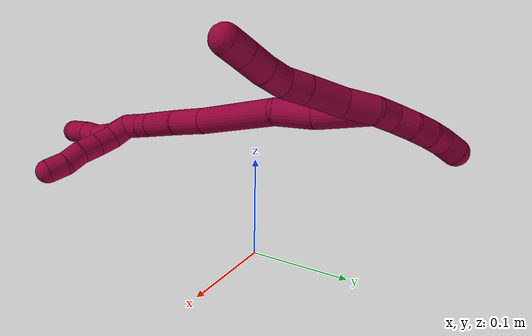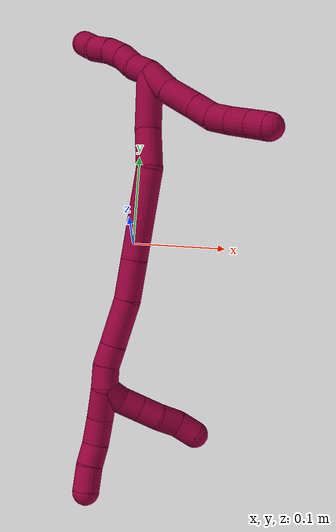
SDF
<sdf version="1.7">
 <world name="default">
  <model name="8">
   <static>0</static>
   <link name="8">
    <collision name="collision-cylinder-e_1_2_8">
     <pose>-0.006238 -0.006517 0.011314 0.522587 -0.445691 -0.121046</pose>
     <geometry><cylinder><radius>0.0125</radius><length>0.028941</length></cylinder></geometry>
     <surface>
      <friction><ode><mu>1.16</mu><mu2>1.16</mu2><slip1>0</slip1><slip2>0</slip2></ode></friction>
      <contact><ode><kp>1e+06</kp><kd>1</kd><max_vel>0</max_vel><min_depth>0.001</min_depth></ode></contact>
     </surface>
    </collision>
    <visual name="visual-cylinder-e_1_2_8">
     <pose>-0.006238 -0.006517 0.011314 0.522587 -0.445691 -0.121046</pose>
     <geometry><cylinder><radius>0.0125</radius><length>0.028941</length></cylinder></geometry>
     <material><ambient>0.584314 0 0.227451 1</ambient></material>
    </visual>
    <collision name="collision-cylinder-e_2_8_9">
     <pose>-0.019477 -0.018209 0.038092 0.322914 -0.405522 -0.066945</pose>
     <geometry><cylinder><radius>0.0125</radius><length>0.035493</length></cylinder></geometry>
     <surface>
      <friction><ode><mu>1.16</mu><mu2>1.16</mu2><slip1>0</slip1><slip2>0</slip2></ode></friction>
      <contact><ode><kp>1e+06</kp><kd>1</kd><max_vel>0</max_vel><min_depth>0.001</min_depth></ode></contact>
     </surface>
    </collision>
    <visual name="visual-cylinder-e_2_8_9">
     <pose>-0.019477 -0.018209 0.038092 0.322914 -0.405522 -0.066945</pose>
     <geometry><cylinder><radius>0.0125</radius><length>0.035493</length></cylinder></geometry>
     <material><ambient>0.584314 0 0.227451 1</ambient></material>
    </visual>
    <collision name="collision-cylinder-e_3_9_10">
     <pose>-0.030556 -0.026724 0.062575 0.354759 -0.401053 -0.072841</pose>
     <geometry><cylinder><radius>0.0125</radius><length>0.020892</length></cylinder></geometry>
     <surface>
      <friction><ode><mu>1.16</mu><mu2>1.16</mu2><slip1>0</slip1><slip2>0</slip2></ode></friction>
      <contact><ode><kp>1e+06</kp><kd>1</kd><max_vel>0</max_vel><min_depth>0.001</min_depth></ode></contact>
     </surface>
    </collision>
    <visual name="visual-cylinder-e_3_9_10">
     <pose>-0.030556 -0.026724 0.062575 0.354759 -0.401053 -0.072841</pose>
     <geometry><cylinder><radius>0.0125</radius><length>0.020892</length></cylinder></geometry>
     <material><ambient>0.584314 0 0.227451 1</ambient></material>
    </visual>
    <collision name="collision-cylinder-e_4_10_11">
     <pose>-0.038686 -0.030343 0.081495 0.028095 -0.388318 -0.005525</pose>
     <geometry><cylinder><radius>0.0125</radius><length>0.021405</length></cylinder></geometry>
     <surface>
      <friction><ode><mu>1.16</mu><mu2>1.16</mu2><slip1>0</slip1><slip2>0</slip2></ode></friction>
      <contact><ode><kp>1e+06</kp><kd>1</kd><max_vel>0</max_vel><min_depth>0.001</min_depth></ode></contact>
     </surface>
    </collision>
    <visual name="visual-cylinder-e_4_10_11">
     <pose>-0.038686 -0.030343 0.081495 0.028095 -0.388318 -0.005525</pose>
     <geometry><cylinder><radius>0.0125</radius><length>0.021405</length></cylinder></geometry>
     <material><ambient>0.584314 0 0.227451 1</ambient></material>
    </visual>
    <collision name="collision-cylinder-e_5_11_12">
     <pose>-0.047817 -0.030131 0.101748 -0.047295 -0.455644 0.010967</pose>
     <geometry><cylinder><radius>0.0125</radius><length>0.023081</length></cylinder></geometry>
     <surface>
      <friction><ode><mu>1.16</mu><mu2>1.16</mu2><slip1>0</slip1><slip2>0</slip2></ode></friction>
      <contact><ode><kp>1e+06</kp><kd>1</kd><max_vel>0</max_vel><min_depth>0.001</min_depth></ode></contact>
     </surface>
    </collision>
    <visual name="visual-cylinder-e_5_11_12">
     <pose>-0.047817 -0.030131 0.101748 -0.047295 -0.455644 0.010967</pose>
     <geometry><cylinder><radius>0.0125</radius><length>0.023081</length></cylinder></geometry>
     <material><ambient>0.584314 0 0.227451 1</ambient></material>
    </visual>
    <collision name="collision-cylinder-e_6_12_6">
     <pose>-0.057307 -0.029329 0.121173 -0.034464 -0.452371 0.007932</pose>
     <geometry><cylinder><radius>0.0125</radius><length>0.020188</length></cylinder></geometry>
     <surface>
      <friction><ode><mu>1.16</mu><mu2>1.16</mu2><slip1>0</slip1><slip2>0</slip2></ode></friction>
      <contact><ode><kp>1e+06</kp><kd>1</kd><max_vel>0</max_vel><min_depth>0.001</min_depth></ode></contact>
     </surface>
    </collision>
    <visual name="visual-cylinder-e_6_12_6">
     <pose>-0.057307 -0.029329 0.121173 -0.034464 -0.452371 0.007932</pose>
     <geometry><cylinder><radius>0.0125</radius><length>0.020188</length></cylinder></geometry>
     <material><ambient>0.584314 0 0.227451 1</ambient></material>
    </visual>
    <collision name="collision-cylinder-e_1_2_13">
     <pose>0.003439 0.00201 -0.009172 -2.92585 0.351099 -2.04534</pose>
     <geometry><cylinder><radius>0.0125</radius><length>0.02</length></cylinder></geometry>
     <surface>
      <friction><ode><mu>1.16</mu><mu2>1.16</mu2><slip1>0</slip1><slip2>0</slip2></ode></friction>
      <contact><ode><kp>1e+06</kp><kd>1</kd><max_vel>0</max_vel><min_depth>0.001</min_depth></ode></contact>
     </surface>
    </collision>
    <visual name="visual-cylinder-e_1_2_13">
     <pose>0.003439 0.00201 -0.009172 -2.92585 0.351099 -2.04534</pose>
     <geometry><cylinder><radius>0.0125</radius><length>0.02</length></cylinder></geometry>
     <material><ambient>0.584314 0 0.227451 1</ambient></material>
    </visual>
    <collision name="collision-cylinder-e_2_13_14">
     <pose>0.012224 0.007556 -0.02602 -2.70993 0.564015 -1.846</pose>
     <geometry><cylinder><radius>0.0125</radius><length>0.02</length></cylinder></geometry>
     <surface>
      <friction><ode><mu>1.16</mu><mu2>1.16</mu2><slip1>0</slip1><slip2>0</slip2></ode></friction>
      <contact><ode><kp>1e+06</kp><kd>1</kd><max_vel>0</max_vel><min_depth>0.001</min_depth></ode></contact>
     </surface>
    </collision>
    <visual name="visual-cylinder-e_2_13_14">
     <pose>0.012224 0.007556 -0.02602 -2.70993 0.564015 -1.846</pose>
     <geometry><cylinder><radius>0.0125</radius><length>0.02</length></cylinder></geometry>
     <material><ambient>0.584314 0 0.227451 1</ambient></material>
    </visual>
    <collision name="collision-cylinder-e_3_14_15">
     <pose>0.021904 0.013138 -0.042473 -2.91259 0.448209 -2.20702</pose>
     <geometry><cylinder><radius>0.0125</radius><length>0.02</length></cylinder></geometry>
     <surface>
      <friction><ode><mu>1.16</mu><mu2>1.16</mu2><slip1>0</slip1><slip2>0</slip2></ode></friction>
      <contact><ode><kp>1e+06</kp><kd>1</kd><max_vel>0</max_vel><min_depth>0.001</min_depth></ode></contact>
     </surface>
    </collision>
    <visual name="visual-cylinder-e_3_14_15">
     <pose>0.021904 0.013138 -0.042473 -2.91259 0.448209 -2.20702</pose>
     <geometry><cylinder><radius>0.0125</radius><length>0.02</length></cylinder></geometry>
     <material><ambient>0.584314 0 0.227451 1</ambient></material>
    </visual>
    <collision name="collision-cylinder-e_4_15_16">
     <pose>0.029436 0.015554 -0.060718 -3.10252 0.32558 -2.90479</pose>
     <geometry><cylinder><radius>0.0125</radius><length>0.02</length></cylinder></geometry>
     <surface>
      <friction><ode><mu>1.16</mu><mu2>1.16</mu2><slip1>0</slip1><slip2>0</slip2></ode></friction>
      <contact><ode><kp>1e+06</kp><kd>1</kd><max_vel>0</max_vel><min_depth>0.001</min_depth></ode></contact>
     </surface>
    </collision>
    <visual name="visual-cylinder-e_4_15_16">
     <pose>0.029436 0.015554 -0.060718 -3.10252 0.32558 -2.90479</pose>
     <geometry><cylinder><radius>0.0125</radius><length>0.02</length></cylinder></geometry>
     <material><ambient>0.584314 0 0.227451 1</ambient></material>
    </visual>
    <collision name="collision-cylinder-e_5_16_5">
     <pose>0.038502 0.017219 -0.078179 -2.98093 0.627032 -2.65482</pose>
     <geometry><cylinder><radius>0.0125</radius><length>0.02</length></cylinder></geometry>
     <surface>
      <friction><ode><mu>1.16</mu><mu2>1.16</mu2><slip1>0</slip1><slip2>0</slip2></ode></friction>
      <contact><ode><kp>1e+06</kp><kd>1</kd><max_vel>0</max_vel><min_depth>0.001</min_depth></ode></contact>
     </surface>
    </collision>
    <visual name="visual-cylinder-e_5_16_5">
     <pose>0.038502 0.017219 -0.078179 -2.98093 0.627032 -2.65482</pose>
     <geometry><cylinder><radius>0.0125</radius><length>0.02</length></cylinder></geometry>
     <material><ambient>0.584314 0 0.227451 1</ambient></material>
    </visual>
    <collision name="collision-cylinder-e_1_2_17">
     <pose>-0.010556 -0.024505 0.002131 1.48405 -0.405367 -0.372454</pose>
     <geometry><cylinder><radius>0.0125</radius><length>0.053534</length></cylinder></geometry>
     <surface>
      <friction><ode><mu>1.16</mu><mu2>1.16</mu2><slip1>0</slip1><slip2>0</slip2></ode></friction>
      <contact><ode><kp>1e+06</kp><kd>1</kd><max_vel>0</max_vel><min_depth>0.001</min_depth></ode></contact>
     </surface>
    </collision>
    <visual name="visual-cylinder-e_1_2_17">
     <pose>-0.010556 -0.024505 0.002131 1.48405 -0.405367 -0.372454</pose>
     <geometry><cylinder><radius>0.0125</radius><length>0.053534</length></cylinder></geometry>
     <material><ambient>0.584314 0 0.227451 1</ambient></material>
    </visual>
    <collision name="collision-cylinder-e_2_17_18">
     <pose>-0.030788 -0.064686 0.00808 1.33188 -0.54023 -0.428399</pose>
     <geometry><cylinder><radius>0.0125</radius><length>0.037625</length></cylinder></geometry>
     <surface>
      <friction><ode><mu>1.16</mu><mu2>1.16</mu2><slip1>0</slip1><slip2>0</slip2></ode></friction>
      <contact><ode><kp>1e+06</kp><kd>1</kd><max_vel>0</max_vel><min_depth>0.001</min_depth></ode></contact>
     </surface>
    </collision>
    <visual name="visual-cylinder-e_2_17_18">
     <pose>-0.030788 -0.064686 0.00808 1.33188 -0.54023 -0.428399</pose>
     <geometry><cylinder><radius>0.0125</radius><length>0.037625</length></cylinder></geometry>
     <material><ambient>0.584314 0 0.227451 1</ambient></material>
    </visual>
    <collision name="collision-cylinder-e_3_18_19">
     <pose>-0.056753 -0.120049 0.00897 1.64444 -0.388511 -0.417404</pose>
     <geometry><cylinder><radius>0.0125</radius><length>0.086</length></cylinder></geometry>
     <surface>
      <friction><ode><mu>1.16</mu><mu2>1.16</mu2><slip1>0</slip1><slip2>0</slip2></ode></friction>
      <contact><ode><kp>1e+06</kp><kd>1</kd><max_vel>0</max_vel><min_depth>0.001</min_depth></ode></contact>
     </surface>
    </collision>
    <visual name="visual-cylinder-e_3_18_19">
     <pose>-0.056753 -0.120049 0.00897 1.64444 -0.388511 -0.417404</pose>
     <geometry><cylinder><radius>0.0125</radius><length>0.086</length></cylinder></geometry>
     <material><ambient>0.584314 0 0.227451 1</ambient></material>
    </visual>
    <collision name="collision-cylinder-e_4_19_20">
     <pose>-0.080995 -0.1768 0.005066 1.62793 -0.435577 -0.460333</pose>
     <geometry><cylinder><radius>0.0125</radius><length>0.037703</length></cylinder></geometry>
     <surface>
      <friction><ode><mu>1.16</mu><mu2>1.16</mu2><slip1>0</slip1><slip2>0</slip2></ode></friction>
      <contact><ode><kp>1e+06</kp><kd>1</kd><max_vel>0</max_vel><min_depth>0.001</min_depth></ode></contact>
     </surface>
    </collision>
    <visual name="visual-cylinder-e_4_19_20">
     <pose>-0.080995 -0.1768 0.005066 1.62793 -0.435577 -0.460333</pose>
     <geometry><cylinder><radius>0.0125</radius><length>0.037703</length></cylinder></geometry>
     <material><ambient>0.584314 0 0.227451 1</ambient></material>
    </visual>
    <collision name="collision-cylinder-e_5_20_21">
     <pose>-0.097999 -0.213249 -0.000273 1.79217 -0.427354 -0.529759</pose>
     <geometry><cylinder><radius>0.0125</radius><length>0.043668</length></cylinder></geometry>
     <surface>
      <friction><ode><mu>1.16</mu><mu2>1.16</mu2><slip1>0</slip1><slip2>0</slip2></ode></friction>
      <contact><ode><kp>1e+06</kp><kd>1</kd><max_vel>0</max_vel><min_depth>0.001</min_depth></ode></contact>
     </surface>
    </collision>
    <visual name="visual-cylinder-e_5_20_21">
     <pose>-0.097999 -0.213249 -0.000273 1.79217 -0.427354 -0.529759</pose>
     <geometry><cylinder><radius>0.0125</radius><length>0.043668</length></cylinder></geometry>
     <material><ambient>0.584314 0 0.227451 1</ambient></material>
    </visual>
    <collision name="collision-cylinder-e_6_21_22">
     <pose>-0.111291 -0.241782 -0.006843 1.80757 -0.423548 -0.533098</pose>
     <geometry><cylinder><radius>0.0125</radius><length>0.020644</length></cylinder></geometry>
     <surface>
      <friction><ode><mu>1.16</mu><mu2>1.16</mu2><slip1>0</slip1><slip2>0</slip2></ode></friction>
      <contact><ode><kp>1e+06</kp><kd>1</kd><max_vel>0</max_vel><min_depth>0.001</min_depth></ode></contact>
     </surface>
    </collision>
    <visual name="visual-cylinder-e_6_21_22">
     <pose>-0.111291 -0.241782 -0.006843 1.80757 -0.423548 -0.533098</pose>
     <geometry><cylinder><radius>0.0125</radius><length>0.020644</length></cylinder></geometry>
     <material><ambient>0.584314 0 0.227451 1</ambient></material>
    </visual>
    <collision name="collision-cylinder-e_7_22_1">
     <pose>-0.119995 -0.260318 -0.00846 1.50805 -0.442893 -0.416736</pose>
     <geometry><cylinder><radius>0.0125</radius><length>0.020825</length></cylinder></geometry>
     <surface>
      <friction><ode><mu>1.16</mu><mu2>1.16</mu2><slip1>0</slip1><slip2>0</slip2></ode></friction>
      <contact><ode><kp>1e+06</kp><kd>1</kd><max_vel>0</max_vel><min_depth>0.001</min_depth></ode></contact>
     </surface>
    </collision>
    <visual name="visual-cylinder-e_7_22_1">
     <pose>-0.119995 -0.260318 -0.00846 1.50805 -0.442893 -0.416736</pose>
     <geometry><cylinder><radius>0.0125</radius><length>0.020825</length></cylinder></geometry>
     <material><ambient>0.584314 0 0.227451 1</ambient></material>
    </visual>
    <collision name="collision-cylinder-e_1_1_23">
     <pose>-0.12687 -0.284233 -0.009814 1.7038 -0.163166 -0.186324</pose>
     <geometry><cylinder><radius>0.0125</radius><length>0.029703</length></cylinder></geometry>
     <surface>
      <friction><ode><mu>1.16</mu><mu2>1.16</mu2><slip1>0</slip1><slip2>0</slip2></ode></friction>
      <contact><ode><kp>1e+06</kp><kd>1</kd><max_vel>0</max_vel><min_depth>0.001</min_depth></ode></contact>
     </surface>
    </collision>
    <visual name="visual-cylinder-e_1_1_23">
     <pose>-0.12687 -0.284233 -0.009814 1.7038 -0.163166 -0.186324</pose>
     <geometry><cylinder><radius>0.0125</radius><length>0.029703</length></cylinder></geometry>
     <material><ambient>0.584314 0 0.227451 1</ambient></material>
    </visual>
    <collision name="collision-cylinder-e_2_23_24">
     <pose>-0.134305 -0.31062 -0.012731 1.65276 -0.399238 -0.432365</pose>
     <geometry><cylinder><radius>0.0125</radius><length>0.025838</length></cylinder></geometry>
     <surface>
      <friction><ode><mu>1.16</mu><mu2>1.16</mu2><slip1>0</slip1><slip2>0</slip2></ode></friction>
      <contact><ode><kp>1e+06</kp><kd>1</kd><max_vel>0</max_vel><min_depth>0.001</min_depth></ode></contact>
     </surface>
    </collision>
    <visual name="visual-cylinder-e_2_23_24">
     <pose>-0.134305 -0.31062 -0.012731 1.65276 -0.399238 -0.432365</pose>
     <geometry><cylinder><radius>0.0125</radius><length>0.025838</length></cylinder></geometry>
     <material><ambient>0.584314 0 0.227451 1</ambient></material>
    </visual>
    <collision name="collision-cylinder-e_3_24_25">
     <pose>-0.145514 -0.330593 -0.014551 1.67468 -0.64915 -0.714698</pose>
     <geometry><cylinder><radius>0.0125</radius><length>0.020471</length></cylinder></geometry>
     <surface>
      <friction><ode><mu>1.16</mu><mu2>1.16</mu2><slip1>0</slip1><slip2>0</slip2></ode></friction>
      <contact><ode><kp>1e+06</kp><kd>1</kd><max_vel>0</max_vel><min_depth>0.001</min_depth></ode></contact>
     </surface>
    </collision>
    <visual name="visual-cylinder-e_3_24_25">
     <pose>-0.145514 -0.330593 -0.014551 1.67468 -0.64915 -0.714698</pose>
     <geometry><cylinder><radius>0.0125</radius><length>0.020471</length></cylinder></geometry>
     <material><ambient>0.584314 0 0.227451 1</ambient></material>
    </visual>
    <collision name="collision-cylinder-e_4_25_4">
     <pose>-0.157855 -0.348995 -0.015169 1.54869 -0.538777 -0.527539</pose>
     <geometry><cylinder><radius>0.0125</radius><length>0.023988</length></cylinder></geometry>
     <surface>
      <friction><ode><mu>1.16</mu><mu2>1.16</mu2><slip1>0</slip1><slip2>0</slip2></ode></friction>
      <contact><ode><kp>1e+06</kp><kd>1</kd><max_vel>0</max_vel><min_depth>0.001</min_depth></ode></contact>
     </surface>
    </collision>
    <visual name="visual-cylinder-e_4_25_4">
     <pose>-0.157855 -0.348995 -0.015169 1.54869 -0.538777 -0.527539</pose>
     <geometry><cylinder><radius>0.0125</radius><length>0.023988</length></cylinder></geometry>
     <material><ambient>0.584314 0 0.227451 1</ambient></material>
    </visual>
    <collision name="collision-cylinder-e_1_1_26">
     <pose>-0.121062 -0.27673 -0.001612 0.842864 0.346441 0.156558</pose>
     <geometry><cylinder><radius>0.0125</radius><length>0.02</length></cylinder></geometry>
     <surface>
      <friction><ode><mu>1.16</mu><mu2>1.16</mu2><slip1>0</slip1><slip2>0</slip2></ode></friction>
      <contact><ode><kp>1e+06</kp><kd>1</kd><max_vel>0</max_vel><min_depth>0.001</min_depth></ode></contact>
     </surface>
    </collision>
    <visual name="visual-cylinder-e_1_1_26">
     <pose>-0.121062 -0.27673 -0.001612 0.842864 0.346441 0.156558</pose>
     <geometry><cylinder><radius>0.0125</radius><length>0.02</length></cylinder></geometry>
     <material><ambient>0.584314 0 0.227451 1</ambient></material>
    </visual>
    <collision name="collision-cylinder-e_2_26_27">
     <pose>-0.114896 -0.288546 0.012973 0.522379 0.280734 0.0755</pose>
     <geometry><cylinder><radius>0.0125</radius><length>0.02</length></cylinder></geometry>
     <surface>
      <friction><ode><mu>1.16</mu><mu2>1.16</mu2><slip1>0</slip1><slip2>0</slip2></ode></friction>
      <contact><ode><kp>1e+06</kp><kd>1</kd><max_vel>0</max_vel><min_depth>0.001</min_depth></ode></contact>
     </surface>
    </collision>
    <visual name="visual-cylinder-e_2_26_27">
     <pose>-0.114896 -0.288546 0.012973 0.522379 0.280734 0.0755</pose>
     <geometry><cylinder><radius>0.0125</radius><length>0.02</length></cylinder></geometry>
     <material><ambient>0.584314 0 0.227451 1</ambient></material>
    </visual>
    <collision name="collision-cylinder-e_3_27_28">
     <pose>-0.109675 -0.297926 0.029842 0.492755 0.247533 0.062551</pose>
     <geometry><cylinder><radius>0.0125</radius><length>0.02</length></cylinder></geometry>
     <surface>
      <friction><ode><mu>1.16</mu><mu2>1.16</mu2><slip1>0</slip1><slip2>0</slip2></ode></friction>
      <contact><ode><kp>1e+06</kp><kd>1</kd><max_vel>0</max_vel><min_depth>0.001</min_depth></ode></contact>
     </surface>
    </collision>
    <visual name="visual-cylinder-e_3_27_28">
     <pose>-0.109675 -0.297926 0.029842 0.492755 0.247533 0.062551</pose>
     <geometry><cylinder><radius>0.0125</radius><length>0.02</length></cylinder></geometry>
     <material><ambient>0.584314 0 0.227451 1</ambient></material>
    </visual>
    <collision name="collision-cylinder-e_4_28_29">
     <pose>-0.102925 -0.307236 0.046078 0.550547 0.444528 0.12749</pose>
     <geometry><cylinder><radius>0.0125</radius><length>0.02</length></cylinder></geometry>
     <surface>
      <friction><ode><mu>1.16</mu><mu2>1.16</mu2><slip1>0</slip1><slip2>0</slip2></ode></friction>
      <contact><ode><kp>1e+06</kp><kd>1</kd><max_vel>0</max_vel><min_depth>0.001</min_depth></ode></contact>
     </surface>
    </collision>
    <visual name="visual-cylinder-e_4_28_29">
     <pose>-0.102925 -0.307236 0.046078 0.550547 0.444528 0.12749</pose>
     <geometry><cylinder><radius>0.0125</radius><length>0.02</length></cylinder></geometry>
     <material><ambient>0.584314 0 0.227451 1</ambient></material>
    </visual>
    <collision name="collision-cylinder-e_5_29_3">
     <pose>-0.096824 -0.317567 0.061853 0.606649 0.181012 0.056793</pose>
     <geometry><cylinder><radius>0.0125</radius><length>0.02</length></cylinder></geometry>
     <surface>
      <friction><ode><mu>1.16</mu><mu2>1.16</mu2><slip1>0</slip1><slip2>0</slip2></ode></friction>
      <contact><ode><kp>1e+06</kp><kd>1</kd><max_vel>0</max_vel><min_depth>0.001</min_depth></ode></contact>
     </surface>
    </collision>
    <visual name="visual-cylinder-e_5_29_3">
     <pose>-0.096824 -0.317567 0.061853 0.606649 0.181012 0.056793</pose>
     <geometry><cylinder><radius>0.0125</radius><length>0.02</length></cylinder></geometry>
     <material><ambient>0.584314 0 0.227451 1</ambient></material>
    </visual>
    <collision name="collision-sphere-3">
     <pose>-0.095024 -0.323175 0.069934 0 -0 0</pose>
     <geometry><sphere><radius>0.0125</radius></sphere></geometry>
     <surface>
      <friction><ode><mu>1.16</mu><mu2>1.16</mu2><slip1>0</slip1><slip2>0</slip2></ode></friction>
      <contact><ode><kp>1e+06</kp><kd>1</kd><max_vel>0</max_vel><min_depth>0.001</min_depth></ode></contact>
     </surface>
    </collision>
    <visual name="visual-sphere-3">
     <pose>-0.095024 -0.323175 0.069934 0 -0 0</pose>
     <geometry><sphere><radius>0.0125</radius></sphere></geometry>
     <material><ambient>0.584314 0 0.227451 1</ambient></material>
    </visual>
    <collision name="collision-sphere-29">
     <pose>-0.098625 -0.311959 0.053772 0 -0 0</pose>
     <geometry><sphere><radius>0.0125</radius></sphere></geometry>
     <surface>
      <friction><ode><mu>1.16</mu><mu2>1.16</mu2><slip1>0</slip1><slip2>0</slip2></ode></friction>
      <contact><ode><kp>1e+06</kp><kd>1</kd><max_vel>0</max_vel><min_depth>0.001</min_depth></ode></contact>
     </surface>
    </collision>
    <visual name="visual-sphere-29">
     <pose>-0.098625 -0.311959 0.053772 0 -0 0</pose>
     <geometry><sphere><radius>0.0125</radius></sphere></geometry>
     <material><ambient>0.584314 0 0.227451 1</ambient></material>
    </visual>
    <collision name="collision-sphere-28">
     <pose>-0.107225 -0.302513 0.038383 0 -0 0</pose>
     <geometry><sphere><radius>0.0125</radius></sphere></geometry>
     <surface>
      <friction><ode><mu>1.16</mu><mu2>1.16</mu2><slip1>0</slip1><slip2>0</slip2></ode></friction>
      <contact><ode><kp>1e+06</kp><kd>1</kd><max_vel>0</max_vel><min_depth>0.001</min_depth></ode></contact>
     </surface>
    </collision>
    <visual name="visual-sphere-28">
     <pose>-0.107225 -0.302513 0.038383 0 -0 0</pose>
     <geometry><sphere><radius>0.0125</radius></sphere></geometry>
     <material><ambient>0.584314 0 0.227451 1</ambient></material>
    </visual>
    <collision name="collision-sphere-27">
     <pose>-0.112125 -0.29334 0.0213 0 -0 0</pose>
     <geometry><sphere><radius>0.0125</radius></sphere></geometry>
     <surface>
      <friction><ode><mu>1.16</mu><mu2>1.16</mu2><slip1>0</slip1><slip2>0</slip2></ode></friction>
      <contact><ode><kp>1e+06</kp><kd>1</kd><max_vel>0</max_vel><min_depth>0.001</min_depth></ode></contact>
     </surface>
    </collision>
    <visual name="visual-sphere-27">
     <pose>-0.112125 -0.29334 0.0213 0 -0 0</pose>
     <geometry><sphere><radius>0.0125</radius></sphere></geometry>
     <material><ambient>0.584314 0 0.227451 1</ambient></material>
    </visual>
    <collision name="collision-sphere-26">
     <pose>-0.117667 -0.283752 0.004646 0 -0 0</pose>
     <geometry><sphere><radius>0.0125</radius></sphere></geometry>
     <surface>
      <friction><ode><mu>1.16</mu><mu2>1.16</mu2><slip1>0</slip1><slip2>0</slip2></ode></friction>
      <contact><ode><kp>1e+06</kp><kd>1</kd><max_vel>0</max_vel><min_depth>0.001</min_depth></ode></contact>
     </surface>
    </collision>
    <visual name="visual-sphere-26">
     <pose>-0.117667 -0.283752 0.004646 0 -0 0</pose>
     <geometry><sphere><radius>0.0125</radius></sphere></geometry>
     <material><ambient>0.584314 0 0.227451 1</ambient></material>
    </visual>
    <collision name="collision-sphere-4">
     <pose>-0.164009 -0.359288 -0.014942 0 -0 0</pose>
     <geometry><sphere><radius>0.0125</radius></sphere></geometry>
     <surface>
      <friction><ode><mu>1.16</mu><mu2>1.16</mu2><slip1>0</slip1><slip2>0</slip2></ode></friction>
      <contact><ode><kp>1e+06</kp><kd>1</kd><max_vel>0</max_vel><min_depth>0.001</min_depth></ode></contact>
     </surface>
    </collision>
    <visual name="visual-sphere-4">
     <pose>-0.164009 -0.359288 -0.014942 0 -0 0</pose>
     <geometry><sphere><radius>0.0125</radius></sphere></geometry>
     <material><ambient>0.584314 0 0.227451 1</ambient></material>
    </visual>
    <collision name="collision-sphere-25">
     <pose>-0.151702 -0.338703 -0.015397 0 -0 0</pose>
     <geometry><sphere><radius>0.0125</radius></sphere></geometry>
     <surface>
      <friction><ode><mu>1.16</mu><mu2>1.16</mu2><slip1>0</slip1><slip2>0</slip2></ode></friction>
      <contact><ode><kp>1e+06</kp><kd>1</kd><max_vel>0</max_vel><min_depth>0.001</min_depth></ode></contact>
     </surface>
    </collision>
    <visual name="visual-sphere-25">
     <pose>-0.151702 -0.338703 -0.015397 0 -0 0</pose>
     <geometry><sphere><radius>0.0125</radius></sphere></geometry>
     <material><ambient>0.584314 0 0.227451 1</ambient></material>
    </visual>
    <collision name="collision-sphere-24">
     <pose>-0.139326 -0.322484 -0.013706 0 -0 0</pose>
     <geometry><sphere><radius>0.0125</radius></sphere></geometry>
     <surface>
      <friction><ode><mu>1.16</mu><mu2>1.16</mu2><slip1>0</slip1><slip2>0</slip2></ode></friction>
      <contact><ode><kp>1e+06</kp><kd>1</kd><max_vel>0</max_vel><min_depth>0.001</min_depth></ode></contact>
     </surface>
    </collision>
    <visual name="visual-sphere-24">
     <pose>-0.139326 -0.322484 -0.013706 0 -0 0</pose>
     <geometry><sphere><radius>0.0125</radius></sphere></geometry>
     <material><ambient>0.584314 0 0.227451 1</ambient></material>
    </visual>
    <collision name="collision-sphere-23">
     <pose>-0.129283 -0.298757 -0.011757 0 -0 0</pose>
     <geometry><sphere><radius>0.0125</radius></sphere></geometry>
     <surface>
      <friction><ode><mu>1.16</mu><mu2>1.16</mu2><slip1>0</slip1><slip2>0</slip2></ode></friction>
      <contact><ode><kp>1e+06</kp><kd>1</kd><max_vel>0</max_vel><min_depth>0.001</min_depth></ode></contact>
     </surface>
    </collision>
    <visual name="visual-sphere-23">
     <pose>-0.129283 -0.298757 -0.011757 0 -0 0</pose>
     <geometry><sphere><radius>0.0125</radius></sphere></geometry>
     <material><ambient>0.584314 0 0.227451 1</ambient></material>
    </visual>
    <collision name="collision-sphere-1">
     <pose>-0.124458 -0.269708 -0.00787 0 -0 0</pose>
     <geometry><sphere><radius>0.0125</radius></sphere></geometry>
     <surface>
      <friction><ode><mu>1.16</mu><mu2>1.16</mu2><slip1>0</slip1><slip2>0</slip2></ode></friction>
      <contact><ode><kp>1e+06</kp><kd>1</kd><max_vel>0</max_vel><min_depth>0.001</min_depth></ode></contact>
     </surface>
    </collision>
    <visual name="visual-sphere-1">
     <pose>-0.124458 -0.269708 -0.00787 0 -0 0</pose>
     <geometry><sphere><radius>0.0125</radius></sphere></geometry>
     <material><ambient>0.584314 0 0.227451 1</ambient></material>
    </visual>
    <collision name="collision-sphere-22">
     <pose>-0.115533 -0.250929 -0.00905 0 -0 0</pose>
     <geometry><sphere><radius>0.0125</radius></sphere></geometry>
     <surface>
      <friction><ode><mu>1.16</mu><mu2>1.16</mu2><slip1>0</slip1><slip2>0</slip2></ode></friction>
      <contact><ode><kp>1e+06</kp><kd>1</kd><max_vel>0</max_vel><min_depth>0.001</min_depth></ode></contact>
     </surface>
    </collision>
    <visual name="visual-sphere-22">
     <pose>-0.115533 -0.250929 -0.00905 0 -0 0</pose>
     <geometry><sphere><radius>0.0125</radius></sphere></geometry>
     <material><ambient>0.584314 0 0.227451 1</ambient></material>
    </visual>
    <collision name="collision-sphere-21">
     <pose>-0.107048 -0.232634 -0.004636 0 -0 0</pose>
     <geometry><sphere><radius>0.0125</radius></sphere></geometry>
     <surface>
      <friction><ode><mu>1.16</mu><mu2>1.16</mu2><slip1>0</slip1><slip2>0</slip2></ode></friction>
      <contact><ode><kp>1e+06</kp><kd>1</kd><max_vel>0</max_vel><min_depth>0.001</min_depth></ode></contact>
     </surface>
    </collision>
    <visual name="visual-sphere-21">
     <pose>-0.107048 -0.232634 -0.004636 0 -0 0</pose>
     <geometry><sphere><radius>0.0125</radius></sphere></geometry>
     <material><ambient>0.584314 0 0.227451 1</ambient></material>
    </visual>
    <collision name="collision-sphere-12">
     <pose>-0.052895 -0.029641 0.1121 0 -0 0</pose>
     <geometry><sphere><radius>0.0125</radius></sphere></geometry>
     <surface>
      <friction><ode><mu>1.16</mu><mu2>1.16</mu2><slip1>0</slip1><slip2>0</slip2></ode></friction>
      <contact><ode><kp>1e+06</kp><kd>1</kd><max_vel>0</max_vel><min_depth>0.001</min_depth></ode></contact>
     </surface>
    </collision>
    <visual name="visual-sphere-12">
     <pose>-0.052895 -0.029641 0.1121 0 -0 0</pose>
     <geometry><sphere><radius>0.0125</radius></sphere></geometry>
     <material><ambient>0.584314 0 0.227451 1</ambient></material>
    </visual>
    <collision name="collision-sphere-11">
     <pose>-0.042738 -0.030621 0.091397 0 -0 0</pose>
     <geometry><sphere><radius>0.0125</radius></sphere></geometry>
     <surface>
      <friction><ode><mu>1.16</mu><mu2>1.16</mu2><slip1>0</slip1><slip2>0</slip2></ode></friction>
      <contact><ode><kp>1e+06</kp><kd>1</kd><max_vel>0</max_vel><min_depth>0.001</min_depth></ode></contact>
     </surface>
    </collision>
    <visual name="visual-sphere-11">
     <pose>-0.042738 -0.030621 0.091397 0 -0 0</pose>
     <geometry><sphere><radius>0.0125</radius></sphere></geometry>
     <material><ambient>0.584314 0 0.227451 1</ambient></material>
    </visual>
    <collision name="collision-sphere-10">
     <pose>-0.034634 -0.030065 0.071594 0 -0 0</pose>
     <geometry><sphere><radius>0.0125</radius></sphere></geometry>
     <surface>
      <friction><ode><mu>1.16</mu><mu2>1.16</mu2><slip1>0</slip1><slip2>0</slip2></ode></friction>
      <contact><ode><kp>1e+06</kp><kd>1</kd><max_vel>0</max_vel><min_depth>0.001</min_depth></ode></contact>
     </surface>
    </collision>
    <visual name="visual-sphere-10">
     <pose>-0.034634 -0.030065 0.071594 0 -0 0</pose>
     <geometry><sphere><radius>0.0125</radius></sphere></geometry>
     <material><ambient>0.584314 0 0.227451 1</ambient></material>
    </visual>
    <collision name="collision-sphere-9">
     <pose>-0.026478 -0.023383 0.053557 0 -0 0</pose>
     <geometry><sphere><radius>0.0125</radius></sphere></geometry>
     <surface>
      <friction><ode><mu>1.16</mu><mu2>1.16</mu2><slip1>0</slip1><slip2>0</slip2></ode></friction>
      <contact><ode><kp>1e+06</kp><kd>1</kd><max_vel>0</max_vel><min_depth>0.001</min_depth></ode></contact>
     </surface>
    </collision>
    <visual name="visual-sphere-9">
     <pose>-0.026478 -0.023383 0.053557 0 -0 0</pose>
     <geometry><sphere><radius>0.0125</radius></sphere></geometry>
     <material><ambient>0.584314 0 0.227451 1</ambient></material>
    </visual>
    <collision name="collision-sphere-2">
     <geometry><sphere><radius>0.0125</radius></sphere></geometry>
     <surface>
      <friction><ode><mu>1.16</mu><mu2>1.16</mu2><slip1>0</slip1><slip2>0</slip2></ode></friction>
      <contact><ode><kp>1e+06</kp><kd>1</kd><max_vel>0</max_vel><min_depth>0.001</min_depth></ode></contact>
     </surface>
    </collision>
    <visual name="visual-sphere-2">
     <geometry><sphere><radius>0.0125</radius></sphere></geometry>
     <material><ambient>0.584314 0 0.227451 1</ambient></material>
    </visual>
    <collision name="collision-sphere-19">
     <pose>-0.073041 -0.159737 0.006042 0 -0 0</pose>
     <geometry><sphere><radius>0.0125</radius></sphere></geometry>
     <surface>
      <friction><ode><mu>1.16</mu><mu2>1.16</mu2><slip1>0</slip1><slip2>0</slip2></ode></friction>
      <contact><ode><kp>1e+06</kp><kd>1</kd><max_vel>0</max_vel><min_depth>0.001</min_depth></ode></contact>
     </surface>
    </collision>
    <visual name="visual-sphere-19">
     <pose>-0.073041 -0.159737 0.006042 0 -0 0</pose>
     <geometry><sphere><radius>0.0125</radius></sphere></geometry>
     <material><ambient>0.584314 0 0.227451 1</ambient></material>
    </visual>
    <collision name="collision-sphere-8">
     <pose>-0.012476 -0.013034 0.022628 0 -0 0</pose>
     <geometry><sphere><radius>0.0125</radius></sphere></geometry>
     <surface>
      <friction><ode><mu>1.16</mu><mu2>1.16</mu2><slip1>0</slip1><slip2>0</slip2></ode></friction>
      <contact><ode><kp>1e+06</kp><kd>1</kd><max_vel>0</max_vel><min_depth>0.001</min_depth></ode></contact>
     </surface>
    </collision>
    <visual name="visual-sphere-8">
     <pose>-0.012476 -0.013034 0.022628 0 -0 0</pose>
     <geometry><sphere><radius>0.0125</radius></sphere></geometry>
     <material><ambient>0.584314 0 0.227451 1</ambient></material>
    </visual>
    <collision name="collision-sphere-6">
     <pose>-0.061719 -0.029016 0.130247 0 -0 0</pose>
     <geometry><sphere><radius>0.0125</radius></sphere></geometry>
     <surface>
      <friction><ode><mu>1.16</mu><mu2>1.16</mu2><slip1>0</slip1><slip2>0</slip2></ode></friction>
      <contact><ode><kp>1e+06</kp><kd>1</kd><max_vel>0</max_vel><min_depth>0.001</min_depth></ode></contact>
     </surface>
    </collision>
    <visual name="visual-sphere-6">
     <pose>-0.061719 -0.029016 0.130247 0 -0 0</pose>
     <geometry><sphere><radius>0.0125</radius></sphere></geometry>
     <material><ambient>0.584314 0 0.227451 1</ambient></material>
    </visual>
    <collision name="collision-sphere-13">
     <pose>0.006879 0.00402 -0.018345 0 -0 0</pose>
     <geometry><sphere><radius>0.0125</radius></sphere></geometry>
     <surface>
      <friction><ode><mu>1.16</mu><mu2>1.16</mu2><slip1>0</slip1><slip2>0</slip2></ode></friction>
      <contact><ode><kp>1e+06</kp><kd>1</kd><max_vel>0</max_vel><min_depth>0.001</min_depth></ode></contact>
     </surface>
    </collision>
    <visual name="visual-sphere-13">
     <pose>0.006879 0.00402 -0.018345 0 -0 0</pose>
     <geometry><sphere><radius>0.0125</radius></sphere></geometry>
     <material><ambient>0.584314 0 0.227451 1</ambient></material>
    </visual>
    <collision name="collision-sphere-14">
     <pose>0.01757 0.011092 -0.033696 0 -0 0</pose>
     <geometry><sphere><radius>0.0125</radius></sphere></geometry>
     <surface>
      <friction><ode><mu>1.16</mu><mu2>1.16</mu2><slip1>0</slip1><slip2>0</slip2></ode></friction>
      <contact><ode><kp>1e+06</kp><kd>1</kd><max_vel>0</max_vel><min_depth>0.001</min_depth></ode></contact>
     </surface>
    </collision>
    <visual name="visual-sphere-14">
     <pose>0.01757 0.011092 -0.033696 0 -0 0</pose>
     <geometry><sphere><radius>0.0125</radius></sphere></geometry>
     <material><ambient>0.584314 0 0.227451 1</ambient></material>
    </visual>
    <collision name="collision-sphere-15">
     <pose>0.026237 0.015184 -0.05125 0 -0 0</pose>
     <geometry><sphere><radius>0.0125</radius></sphere></geometry>
     <surface>
      <friction><ode><mu>1.16</mu><mu2>1.16</mu2><slip1>0</slip1><slip2>0</slip2></ode></friction>
      <contact><ode><kp>1e+06</kp><kd>1</kd><max_vel>0</max_vel><min_depth>0.001</min_depth></ode></contact>
     </surface>
    </collision>
    <visual name="visual-sphere-15">
     <pose>0.026237 0.015184 -0.05125 0 -0 0</pose>
     <geometry><sphere><radius>0.0125</radius></sphere></geometry>
     <material><ambient>0.584314 0 0.227451 1</ambient></material>
    </visual>
    <collision name="collision-sphere-16">
     <pose>0.032634 0.015924 -0.070185 0 -0 0</pose>
     <geometry><sphere><radius>0.0125</radius></sphere></geometry>
     <surface>
      <friction><ode><mu>1.16</mu><mu2>1.16</mu2><slip1>0</slip1><slip2>0</slip2></ode></friction>
      <contact><ode><kp>1e+06</kp><kd>1</kd><max_vel>0</max_vel><min_depth>0.001</min_depth></ode></contact>
     </surface>
    </collision>
    <visual name="visual-sphere-16">
     <pose>0.032634 0.015924 -0.070185 0 -0 0</pose>
     <geometry><sphere><radius>0.0125</radius></sphere></geometry>
     <material><ambient>0.584314 0 0.227451 1</ambient></material>
    </visual>
    <collision name="collision-sphere-5">
     <pose>0.044369 0.018515 -0.086172 0 -0 0</pose>
     <geometry><sphere><radius>0.0125</radius></sphere></geometry>
     <surface>
      <friction><ode><mu>1.16</mu><mu2>1.16</mu2><slip1>0</slip1><slip2>0</slip2></ode></friction>
      <contact><ode><kp>1e+06</kp><kd>1</kd><max_vel>0</max_vel><min_depth>0.001</min_depth></ode></contact>
     </surface>
    </collision>
    <visual name="visual-sphere-5">
     <pose>0.044369 0.018515 -0.086172 0 -0 0</pose>
     <geometry><sphere><radius>0.0125</radius></sphere></geometry>
     <material><ambient>0.584314 0 0.227451 1</ambient></material>
    </visual>
    <collision name="collision-sphere-17">
     <pose>-0.021112 -0.049011 0.004262 0 -0 0</pose>
     <geometry><sphere><radius>0.0125</radius></sphere></geometry>
     <surface>
      <friction><ode><mu>1.16</mu><mu2>1.16</mu2><slip1>0</slip1><slip2>0</slip2></ode></friction>
      <contact><ode><kp>1e+06</kp><kd>1</kd><max_vel>0</max_vel><min_depth>0.001</min_depth></ode></contact>
     </surface>
    </collision>
    <visual name="visual-sphere-17">
     <pose>-0.021112 -0.049011 0.004262 0 -0 0</pose>
     <geometry><sphere><radius>0.0125</radius></sphere></geometry>
     <material><ambient>0.584314 0 0.227451 1</ambient></material>
    </visual>
    <collision name="collision-sphere-18">
     <pose>-0.040464 -0.080362 0.011898 0 -0 0</pose>
     <geometry><sphere><radius>0.0125</radius></sphere></geometry>
     <surface>
      <friction><ode><mu>1.16</mu><mu2>1.16</mu2><slip1>0</slip1><slip2>0</slip2></ode></friction>
      <contact><ode><kp>1e+06</kp><kd>1</kd><max_vel>0</max_vel><min_depth>0.001</min_depth></ode></contact>
     </surface>
    </collision>
    <visual name="visual-sphere-18">
     <pose>-0.040464 -0.080362 0.011898 0 -0 0</pose>
     <geometry><sphere><radius>0.0125</radius></sphere></geometry>
     <material><ambient>0.584314 0 0.227451 1</ambient></material>
    </visual>
    <collision name="collision-sphere-20">
     <pose>-0.08895 -0.193863 0.00409 0 -0 0</pose>
     <geometry><sphere><radius>0.0125</radius></sphere></geometry>
     <surface>
      <friction><ode><mu>1.16</mu><mu2>1.16</mu2><slip1>0</slip1><slip2>0</slip2></ode></friction>
      <contact><ode><kp>1e+06</kp><kd>1</kd><max_vel>0</max_vel><min_depth>0.001</min_depth></ode></contact>
     </surface>
    </collision>
    <visual name="visual-sphere-20">
     <pose>-0.08895 -0.193863 0.00409 0 -0 0</pose>
     <geometry><sphere><radius>0.0125</radius></sphere></geometry>
     <material><ambient>0.584314 0 0.227451 1</ambient></material>
    </visual>
    <inertial>
     <pose>-0.061512 -0.138732 0.010595 0 -0 0</pose>
     <mass>0.75</mass>
     <inertia>
      <ixx>4.8e-05</ixx>
      <ixy>0</ixy>
      <ixz>0</ixz>
      <iyy>-3.8e-05</iyy>
      <iyz>0</iyz>
      <izz>0.000151</izz>
     </inertia>
    </inertial>
   </link>
   <pose>0.013978 0.120353 0.170407 1.11902 0.854636 1.09292</pose>
  </model>
 </world>
</sdf>
